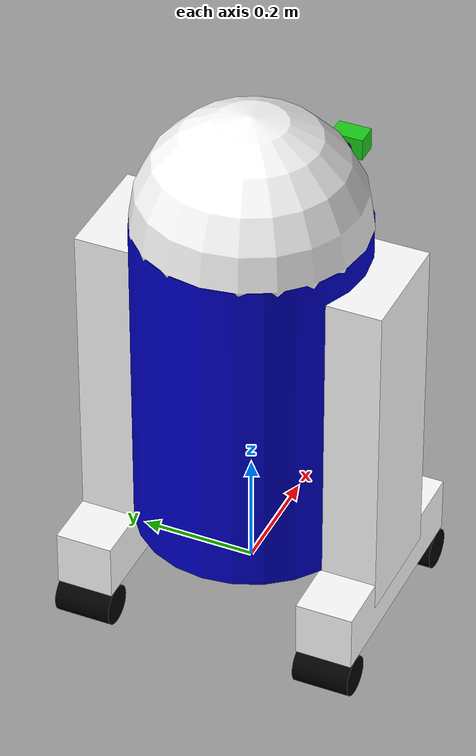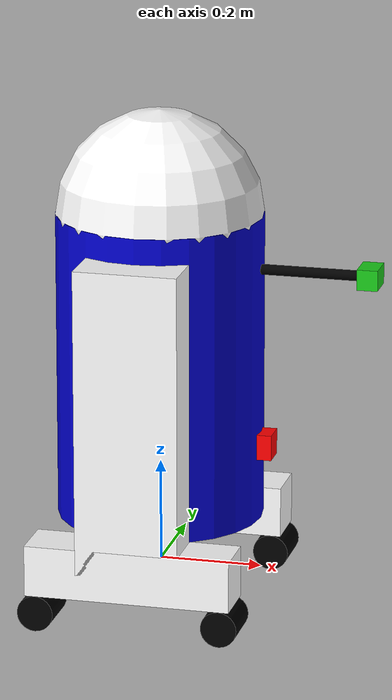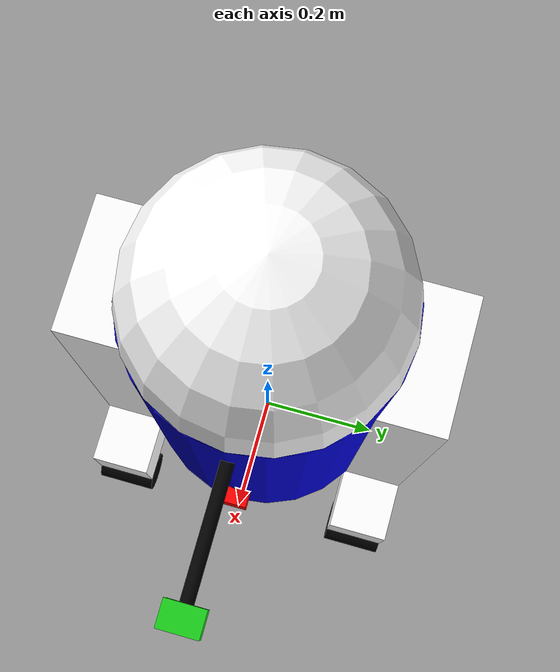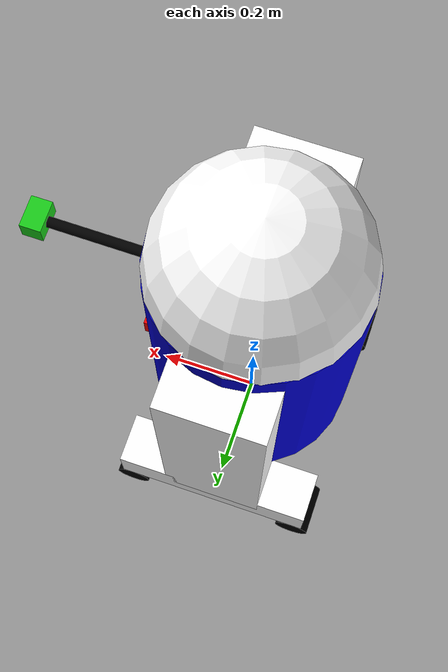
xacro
<?xml version="1.0"?>
<robot xmlns:xacro="http://www.ros.org/wiki/xacro" name="smart_robot">

    <!-- ================== CONSTANTS & MACROS ================== -->
    <xacro:property name="PI" value="3.1415926535897931"/>

    <xacro:macro name="box_inertia" params="m x y z"><inertia ixx="${m*(y*y+z*z)/12}" ixy="0" ixz="0" iyy="${m*(x*x+z*z)/12}" iyz="0" izz="${m*(x*x+y*y)/12}"/></xacro:macro>
    <xacro:macro name="cylinder_inertia" params="m r h"><inertia ixx="${m*(3*r*r+h*h)/12}" ixy="0" ixz="0" iyy="${m*(3*r*r+h*h)/12}" iyz="0" izz="${m*r*r/2}"/></xacro:macro>
    <xacro:macro name="sphere_inertia" params="m r"><inertia ixx="${2*m*r*r/5}" ixy="0" ixz="0" iyy="${2*m*r*r/5}" iyz="0" izz="${2*m*r*r/5}"/></xacro:macro>
    <xacro:macro name="wheel_inertia" params="m r h"><inertia ixx="${m*(3*r*r+h*h)/12}" ixy="0" ixz="0" iyy="${m*r*r/2}" iyz="0" izz="${m*(3*r*r+h*h)/12}"/></xacro:macro>

    <!-- ================== MATERIALS ================== -->
    <material name="blue">
        <color rgba="0 0 0.8 1"/>
    </material>
    <material name="black">
        <color rgba="0 0 0 1"/>
    </material>
    <material name="white">
        <color rgba="1 1 1 1"/>
    </material>
    <material name="green">
        <color rgba="0.1 0.8 0.1 1"/>
    </material>

    <!-- ================== ROBOT STRUCTURE ================== -->

    <!-- Base Link -->
    <link name="base_footprint"/>
    <joint name="base_footprint_joint" type="fixed">
        <parent link="base_footprint"/>
        <child link="base_link"/>
        <origin xyz="0 0 0.4" rpy="0 0 0"/>
    </joint>

    <link name="base_link">
        <visual>
            <geometry><cylinder length="0.6" radius="0.2"/></geometry>
            <material name="blue"/>
        </visual>
        <collision>
            <geometry><cylinder length="0.6" radius="0.2"/></geometry>
        </collision>
        <inertial>
            <mass value="10.0"/>
            <xacro:cylinder_inertia m="10.0" r="0.2" h="0.6"/>
        </inertial>
    </link>

    <!-- Head -->
    <link name="head">
        <visual>
            <geometry><sphere radius="0.2"/></geometry>
            <material name="white"/>
        </visual>
        <collision>
            <geometry><sphere radius="0.2"/></geometry>
        </collision>
        <inertial>
            <mass value="1.0"/>
            <xacro:sphere_inertia m="1.0" r="0.2"/>
        </inertial>
    </link>
    <joint name="head_swivel" type="fixed">
        <parent link="base_link"/>
        <child link="head"/>
        <origin xyz="0 0 0.3"/>
    </joint>

    <!-- Legs and Wheels -->
    <!-- Right Side -->
    <link name="right_leg">
        <visual>
            <geometry><box size="0.6 0.1 0.2"/></geometry>
            <origin rpy="0 1.57075 0" xyz="0 0 -0.3"/>
            <material name="white"/>
        </visual>
        <collision>
            <geometry><box size="0.6 0.1 0.2"/></geometry>
            <origin rpy="0 1.57075 0" xyz="0 0 -0.3"/>
        </collision>
        <inertial>
            <mass value="1.5"/>
            <xacro:box_inertia m="1.5" x="0.2" y="0.1" z="0.6"/>
        </inertial>
    </link>
    <joint name="base_to_right_leg" type="fixed">
        <parent link="base_link"/>
        <child link="right_leg"/>
        <origin xyz="0 -0.22 0.25"/>
    </joint>

    <link name="right_base">
        <visual>
            <geometry><box size="0.4 0.1 0.1"/></geometry>
            <material name="white"/>
        </visual>
        <collision>
            <geometry><box size="0.4 0.1 0.1"/></geometry>
        </collision>
        <inertial>
            <mass value="1.0"/>
            <xacro:box_inertia m="1.0" x="0.4" y="0.1" z="0.1"/>
        </inertial>
    </link>
    <joint name="right_base_joint" type="fixed">
        <parent link="right_leg"/>
        <child link="right_base"/>
        <origin xyz="0 0 -0.6"/>
    </joint>

    <link name="right_front_wheel">
        <visual><origin rpy="1.57075 0 0"/><geometry><cylinder length="0.1" radius="0.035"/></geometry><material name="black"/></visual>
        <collision><origin rpy="1.57075 0 0"/><geometry><cylinder length="0.1" radius="0.035"/></geometry></collision>
        <inertial><mass value="0.2"/><xacro:wheel_inertia m="0.2" r="0.035" h="0.1"/></inertial>
    </link>
    <joint name="right_front_wheel_joint" type="continuous"><parent link="right_base"/><child link="right_front_wheel"/><origin xyz="0.18 0 -0.085"/><axis xyz="0 1 0"/></joint>

    <link name="right_back_wheel">
        <visual><origin rpy="1.57075 0 0"/><geometry><cylinder length="0.1" radius="0.035"/></geometry><material name="black"/></visual>
        <collision><origin rpy="1.57075 0 0"/><geometry><cylinder length="0.1" radius="0.035"/></geometry></collision>
        <inertial><mass value="0.2"/><xacro:wheel_inertia m="0.2" r="0.035" h="0.1"/></inertial>
    </link>
    <joint name="right_back_wheel_joint" type="continuous"><parent link="right_base"/><child link="right_back_wheel"/><origin xyz="-0.18 0 -0.085"/><axis xyz="0 1 0"/></joint>

    <!-- Left Side -->
    <link name="left_leg">
        <visual><geometry><box size="0.6 0.1 0.2"/></geometry><origin rpy="0 1.57075 0" xyz="0 0 -0.3"/><material name="white"/></visual>
        <collision><geometry><box size="0.6 0.1 0.2"/></geometry><origin rpy="0 1.57075 0" xyz="0 0 -0.3"/></collision>
        <inertial><mass value="1.5"/><xacro:box_inertia m="1.5" x="0.2" y="0.1" z="0.6"/></inertial>
    </link>
    <joint name="base_to_left_leg" type="fixed"><parent link="base_link"/><child link="left_leg"/><origin xyz="0 0.22 0.25"/></joint>

    <link name="left_base">
        <visual><geometry><box size="0.4 0.1 0.1"/></geometry><material name="white"/></visual>
        <collision><geometry><box size="0.4 0.1 0.1"/></geometry></collision>
        <inertial><mass value="1.0"/><xacro:box_inertia m="1.0" x="0.4" y="0.1" z="0.1"/></inertial>
    </link>
    <joint name="left_base_joint" type="fixed"><parent link="left_leg"/><child link="left_base"/><origin xyz="0 0 -0.6"/></joint>

    <link name="left_front_wheel">
        <visual><origin rpy="1.57075 0 0"/><geometry><cylinder length="0.1" radius="0.035"/></geometry><material name="black"/></visual>
        <collision><origin rpy="1.57075 0 0"/><geometry><cylinder length="0.1" radius="0.035"/></geometry></collision>
        <inertial><mass value="0.2"/><xacro:wheel_inertia m="0.2" r="0.035" h="0.1"/></inertial>
    </link>
    <joint name="left_front_wheel_joint" type="continuous"><parent link="left_base"/><child link="left_front_wheel"/><origin xyz="0.18 0 -0.085"/><axis xyz="0 1 0"/></joint>

    <link name="left_back_wheel">
        <visual><origin rpy="1.57075 0 0"/><geometry><cylinder length="0.1" radius="0.035"/></geometry><material name="black"/></visual>
        <collision><origin rpy="1.57075 0 0"/><geometry><cylinder length="0.1" radius="0.035"/></geometry></collision>
        <inertial><mass value="0.2"/><xacro:wheel_inertia m="0.2" r="0.035" h="0.1"/></inertial>
    </link>
    <joint name="left_back_wheel_joint" type="continuous"><parent link="left_base"/><child link="left_back_wheel"/><origin xyz="-0.18 0 -0.085"/><axis xyz="0 1 0"/></joint>

    <link name="sprayer_pole">
        <visual>
            <geometry><cylinder length="0.2" radius="0.01"/></geometry>
            <origin rpy="0 1.57075 0" xyz="0.1 0 0"/>
            <material name="black"/>
        </visual>
        <collision><geometry><cylinder length="0.2" radius="0.01"/></geometry><origin rpy="0 1.57075 0" xyz="0.1 0 0"/></collision>
        <inertial><mass value="0.1"/><xacro:cylinder_inertia m="0.1" r="0.01" h="0.2"/></inertial>
    </link>
    <joint name="base_to_sprayer_pole" type="fixed">
        <parent link="base_link"/>
        <child link="sprayer_pole"/>
        <origin rpy="0 0 0" xyz="0.19 0 0.2"/>
    </joint>

    <link name="sprayer_nozzle">
        <visual>
            <geometry><box size="0.04 0.06 0.04"/></geometry>
            <material name="green"/>
        </visual>
        <collision><geometry><box size="0.04 0.06 0.04"/></geometry></collision>
        <inertial><mass value="0.05"/><xacro:box_inertia m="0.05" x="0.04" y="0.06" z="0.04"/></inertial>
    </link>
    <joint name="sprayer_pole_to_nozzle" type="fixed">
        <parent link="sprayer_pole"/>
        <child link="sprayer_nozzle"/>
        <origin xyz="0.22 0 0"/>
    </joint>

    <link name="laser_link">
        <visual><geometry><box size="0.05 0.05 0.05"/></geometry><material name="red"><color rgba="1 0 0 1"/></material></visual>
        <collision><geometry><box size="0.05 0.05 0.05"/></geometry></collision>
        <inertial><mass value="0.1"/><xacro:box_inertia m="0.1" x="0.05" y="0.05" z="0.05"/></inertial>
    </link>
    <joint name="base_to_laser" type="fixed">
        <parent link="base_link"/>
        <child link="laser_link"/>
        <origin xyz="0.2 0 -0.15"/>
    </joint>

    <!-- ================== GAZEBO PLUGINS ================== -->

    <gazebo>
        <plugin name="gazebo_ros_control" filename="libgazebo_ros_control.so">
            <robotNamespace>/</robotNamespace>
        </plugin>
    </gazebo>

    <gazebo>
      <plugin name="differential_drive_controller" filename="libgazebo_ros_diff_drive.so">
        <alwaysOn>true</alwaysOn>
        <updateRate>50</updateRate>
        <leftJoint>left_front_wheel_joint</leftJoint>
        <leftJoint>left_back_wheel_joint</leftJoint>
        <rightJoint>right_front_wheel_joint</rightJoint>
        <rightJoint>right_back_wheel_joint</rightJoint>
        <wheelSeparation>${2 * 0.22}</wheelSeparation>
        <wheelDiameter>${2 * 0.035}</wheelDiameter>
        <torque>20</torque>
        <commandTopic>cmd_vel</commandTopic>
        <odometryTopic>odom</odometryTopic>
        <odometryFrame>odom</odometryFrame>
        <robotBaseFrame>base_footprint</robotBaseFrame>
        <publishOdomTF>false</publishOdomTF>
        <publishTf>false</publishTf>
      </plugin>
    </gazebo>

    <gazebo reference="laser_link">
      <sensor type="ray" name="laser">
        <visualize>true</visualize>
        <update_rate>20</update_rate>
        <ray>
          <scan>
            <horizontal>
              <samples>360</samples>
              <resolution>1</resolution>
              <min_angle>-3.14159</min_angle>
              <max_angle>3.14159</max_angle>
            </horizontal>
          </scan>
          <range>
            <min>0.1</min>
            <max>10.0</max>
          </range>
        </ray>
        <plugin name="gazebo_ros_laser" filename="libgazebo_ros_laser.so">
          <topicName>/scan</topicName>
          <frameName>laser_link</frameName>
        </plugin>
      </sensor>
    </gazebo>

</robot>
